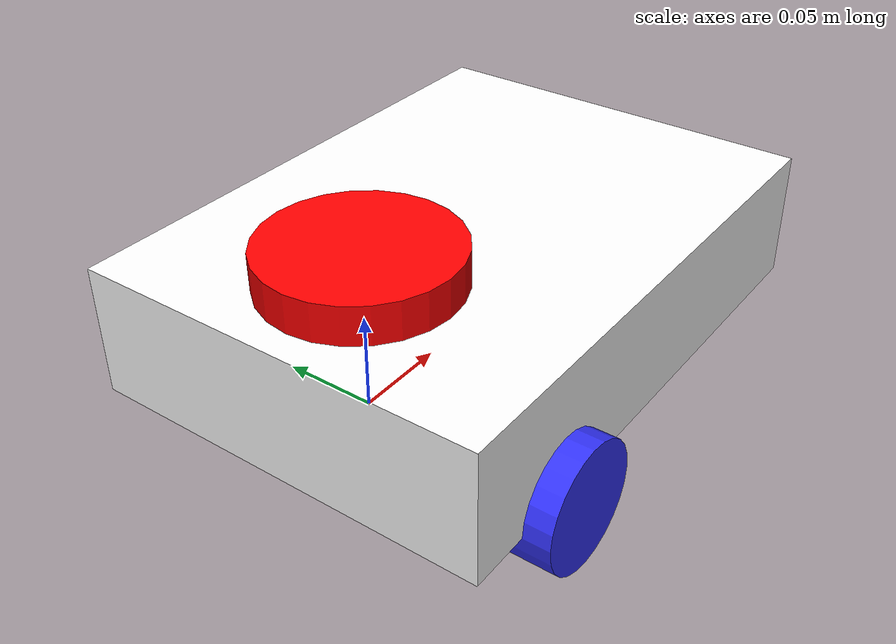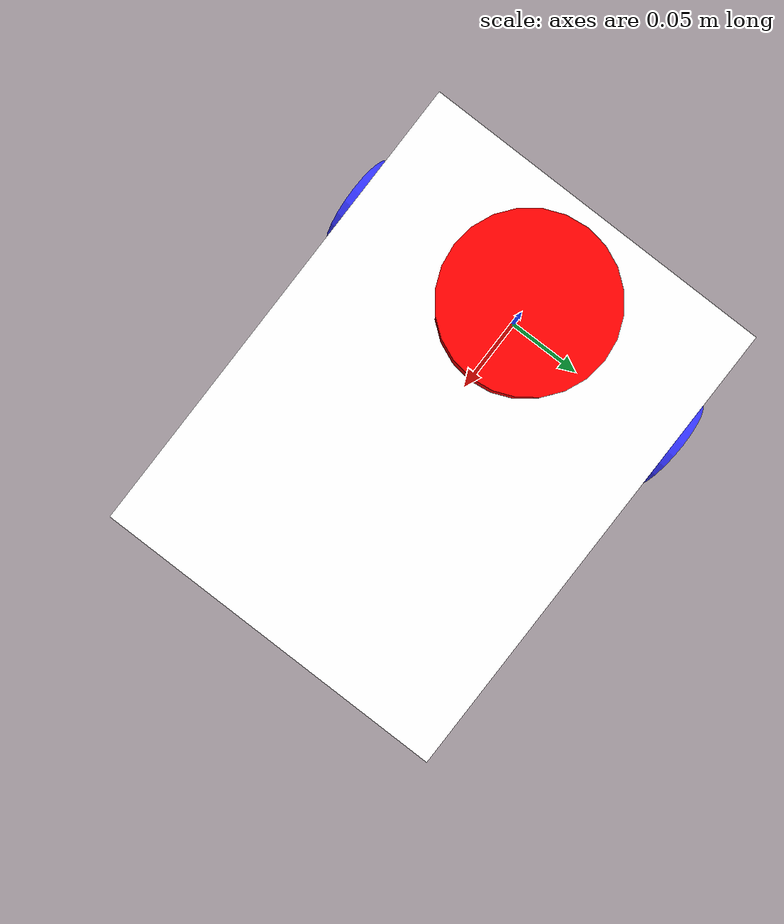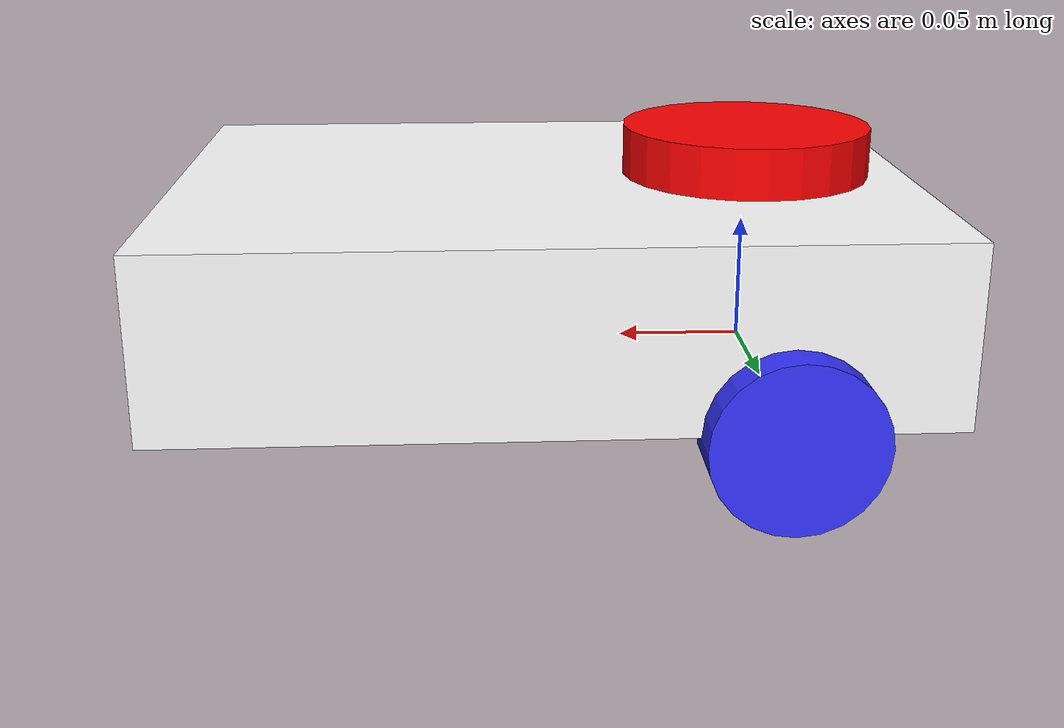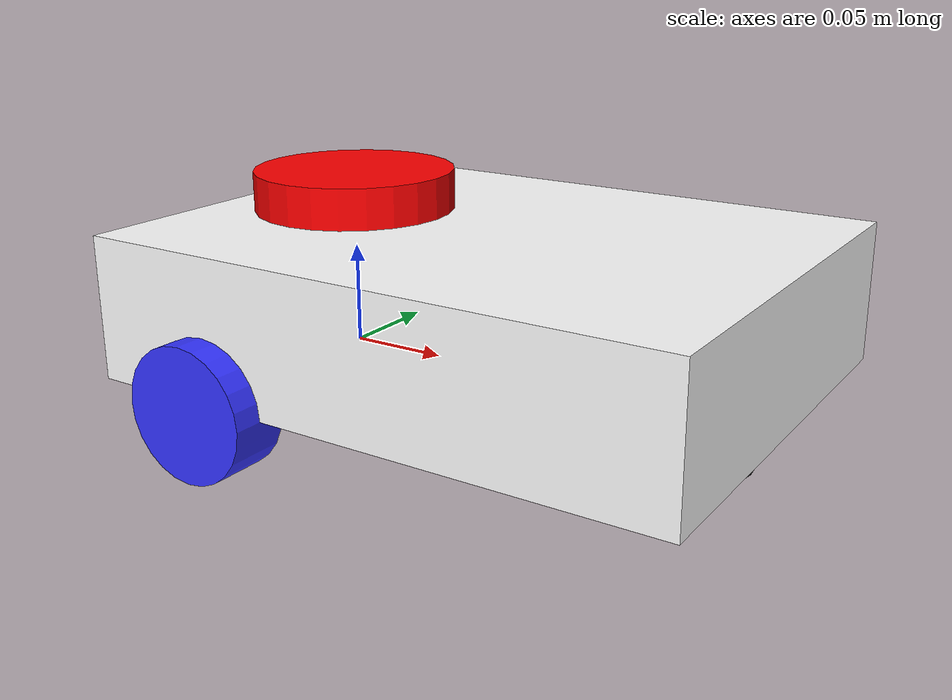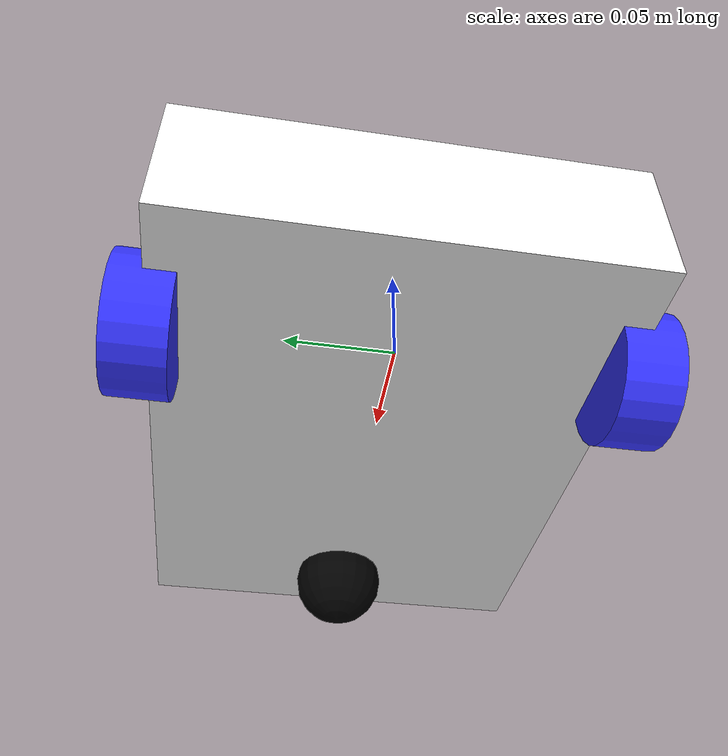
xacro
<?xml version="1.0"?>
<robot xmlns:xacro="http://www.ros.org/wiki/xacro"  name="robot">

    <xacro:arg name="use_ros2_control" default="true"/>
    <xacro:include filename="robot_core.xacro" />
    <xacro:if value="$(arg use_ros2_control)">
        <xacro:include filename="ros2_control.xacro"/>
    </xacro:if>
    <xacro:unless value="$(arg use_ros2_control)">
        <xacro:include filename="gazebo_control.xacro"/>
    </xacro:unless>
    <xacro:include filename="lidar.xacro"/>

</robot>

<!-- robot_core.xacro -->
<robot xmlns:xacro="http://www.ros.org/wiki/xacro"  >

    <xacro:include filename="inertial_macros.xacro"/>

    <xacro:property name="chassis_length" value="0.295"/>
    <xacro:property name="chassis_width" value="0.22"/>
    <xacro:property name="chassis_height" value="0.07"/>
    <xacro:property name="chassis_mass" value="1.5"/>
    <xacro:property name="wheel_radius" value="0.0325"/>
    <xacro:property name="wheel_thickness" value="0.028"/>
    <xacro:property name="wheel_mass" value="0.04"/>
    <xacro:property name="wheel_offset_x" value="0.065"/>
    <xacro:property name="wheel_offset_y" value="0.11"/>
    <xacro:property name="wheel_offset_z" value="0"/>
    <xacro:property name="caster_wheel_radius" value="0.025"/>
    <xacro:property name="caster_wheel_mass" value="0.25"/>
    <xacro:property name="caster_wheel_offset_x" value="0.26"/>
    <xacro:property name="caster_wheel_offset_z" value="${wheel_offset_z - wheel_radius + caster_wheel_radius}"/>

    <material name="white">
        <color rgba="1 1 1 1"  />
    </material>

    <material name="orange">
        <color rgba="1 0.3 0.1 1"  />
    </material>

    <material name="blue">
        <color rgba="0.2 0.2 1 1"  />
    </material>

    <material name="black">
        <color rgba="0 0 0 1"  />
    </material>

    <material name="red">
        <color rgba="1 0 0 1"  />
    </material>

    <link name="base_link">

    </link>

    <!-- CHASSIS LINK -->

    <joint name="chassis_joint" type="fixed">
        <parent link="base_link"/>src/my_bot/description/robot_core.xacro
        <child link="chassis"/>
        <origin xyz="${-wheel_offset_x} 0 ${-wheel_offset_z}"/>
    </joint>

    <link name="chassis">
        <visual>
            <origin xyz="${chassis_length/2} 0 ${chassis_height/2}"/>
            <geometry>
            <box size="${chassis_length} ${chassis_width} ${chassis_height}"/>
            </geometry>
            <material name="white"/>
        </visual>
        <collision>
            <origin xyz="${chassis_length/2} 0 ${chassis_height/2}"/>
            <geometry>
            <box size="${chassis_length} ${chassis_width} ${chassis_height}"/>
            </geometry>
        </collision>
        <xacro:inertial_box mass="0.5" x="${chassis_length}" y="${chassis_width}" z="${chassis_height}">
            <origin xyz="${chassis_length/2} 0 ${chassis_height/2}" rpy="0 0 0"/>
        </xacro:inertial_box>
    </link>

    <gazebo reference='chassis'>
        <material>Gazebo/White</material>
    </gazebo>

    <!-- LEFT WHEEL LINK -->

    <joint name="left_wheel_joint" type="continuous">
        <parent link="base_link"/>
        <child link="left_wheel"/>
        <origin xyz="0 ${wheel_offset_y} 0" rpy="-${pi/2} 0 0"/>
        <axis xyz="0 0 1"/>
    </joint>

    <link name="left_wheel">
        <visual>
            <geometry>
                <cylinder radius="${wheel_radius}" length="${wheel_thickness}"/>
            </geometry>
            <material name="blue"/>
        </visual>
        <collision>
            <geometry>
                <sphere radius="${wheel_radius}"/>
            </geometry>
        </collision>
        <xacro:inertial_cylinder mass="${wheel_mass}" length="${wheel_thickness}" radius="${wheel_radius}">
            <origin xyz="0 0 0" rpy="0 0 0"/>
        </xacro:inertial_cylinder>
    </link>
    <gazebo reference='left_wheel'>
        <material>Gazebo/Blue</material>
    </gazebo>

    <!-- RIGHT WHEEL LINK -->

    <joint name="right_wheel_joint" type="continuous">
        <parent link="base_link"/>
        <child link="right_wheel"/>
        <origin xyz="0 ${-wheel_offset_y} 0" rpy="${pi/2} 0 0"/>
        <axis xyz="0 0 -1"/>
    </joint>

    <link name="right_wheel">
        <visual>
            <geometry>
                <cylinder radius="${wheel_radius}" length="${wheel_thickness}"/>
            </geometry>
            <material name="blue"/>
        </visual>
        <collision>
            <geometry>
                <sphere radius="${wheel_radius}"/>
            </geometry>
        </collision>
        <xacro:inertial_cylinder mass="${wheel_mass}" length="${wheel_thickness}" radius="${wheel_radius}">
            <origin xyz="0 0 0" rpy="0 0 0"/>
        </xacro:inertial_cylinder>

    </link>
    <gazebo reference='right_wheel'>
        <material>Gazebo/Blue</material>
    </gazebo>

    <!-- CASTER WHEEL LINK -->
    <joint name="caster_wheel_joint" type="fixed">
        <parent link="chassis"/>
        <child link="caster_wheel"/>
        <origin xyz="${caster_wheel_offset_x} 0 ${caster_wheel_offset_z}"/>
    </joint>

    <link name="caster_wheel">
        <visual>
            <geometry>
                <sphere radius="${caster_wheel_radius}"/>
            </geometry>
            <material name="black"/>
        </visual>
        <collision>
            <geometry>
                <sphere radius="${caster_wheel_radius}"/>
            </geometry>
        </collision>
        <xacro:inertial_sphere mass="${caster_wheel_mass}" radius="${caster_wheel_radius}">
            <origin xyz="0 0 0" rpy="0 0 0"/>
        </xacro:inertial_sphere>
    </link>
    <gazebo reference='caster_wheel'>
        <material>Gazebo/Black</material>
        <mu1 value="0.001"/>
        <mu2 value="0.001"/>
    </gazebo>
</robot>

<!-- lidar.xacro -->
<robot xmlns:xacro="http://www.ros.org/wiki/xacro">

    <joint name="laser_joint" type="fixed">
        <parent link="chassis"/>
        <child link="laser_frame"/>
        <origin xyz="0.065 0 0.07" rpy="0 0 0"/>

    </joint>

    <link name="laser_frame">
        <visual>
            <geometry>
                <cylinder radius="0.05" length="0.04"/>
            </geometry>
            <material name="red"/>
        </visual>
        <collision>
            <geometry>
                <cylinder radius="0.05" length="0.04"/>
            </geometry>
        </collision>
        <xacro:inertial_cylinder mass="0.1" length="0.04" radius="0.05">
            <origin xyz="0 0 0" rpy="0 0 0"/>
        </xacro:inertial_cylinder>
    </link>

    <gazebo reference="laser_frame">
        <material>Gazebo/Red</material>
        <sensor name="laser" type="ray">
            <pose> 0 0 0 0 0 0</pose>
            <visualize>true</visualize>
            <update_rate>10</update_rate>
            <ray>
                <scan>
                    <horizontal>
                        <samples>360</samples>
                        <resolution>1</resolution>
                        <min_angle>-3.14</min_angle>
                        <max_angle>3.14</max_angle>
                    </horizontal>
                </scan>
                <range>
                    <min>0.3</min>
                    <max>12</max>
                    <resolution>0.01</resolution>
                </range>
            </ray>
            <plugin name="laser_controller" filename="libgazebo_ros_ray_sensor.so">
                <ros>
                    <argument>~/out:=scan</argument>
                </ros>
                <output_type>sensor_msgs/LaserScan</output_type>
                <frame_name>laser_frame</frame_name>
            </plugin>
        </sensor>
    </gazebo>

</robot>
